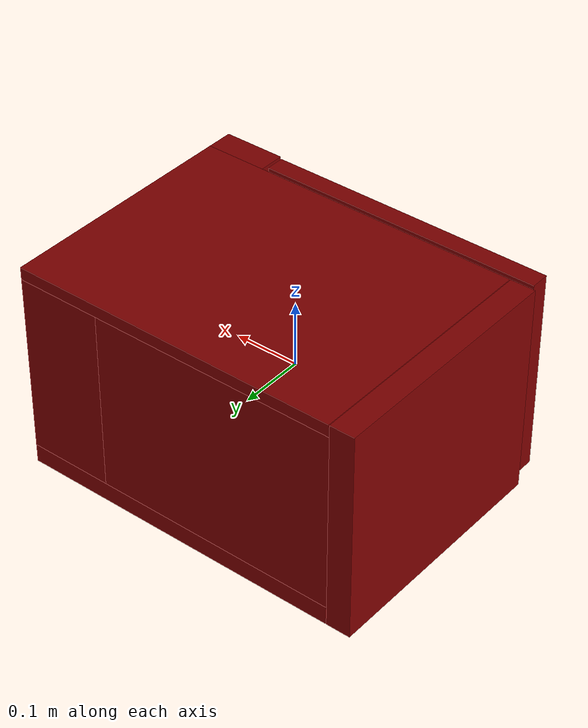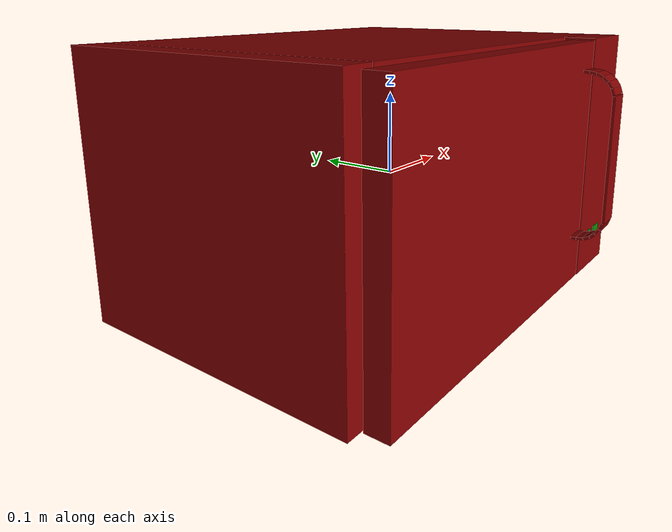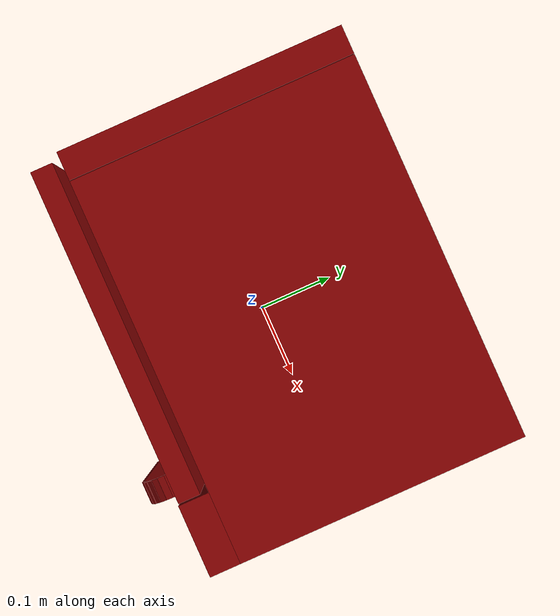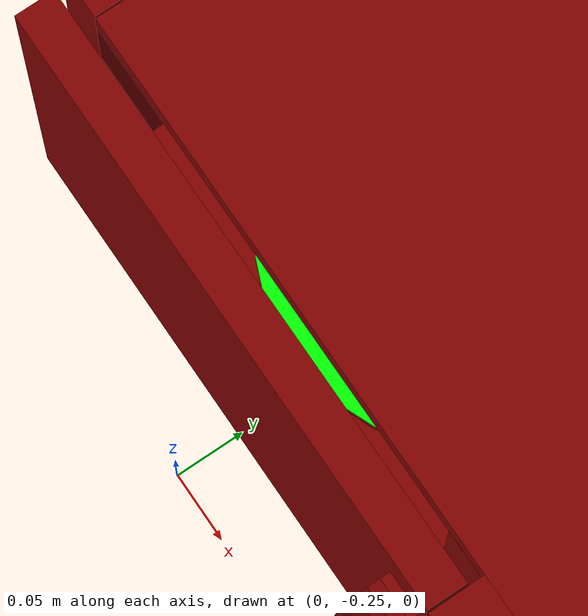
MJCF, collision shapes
<?xml version='1.0' encoding='UTF-8'?>
<mujoco model="model">
  <option timestep="0.002" gravity="0.0 0.0 -9.81"/>
  <compiler angle="radian"/>
  <asset>
    <mesh file="visuals/door.obj" name="door_vis"/>
    <mesh file="visuals/door_Clear.obj" name="door_Clear_vis"/>
    <mesh file="visuals/Body001.obj" name="Body001_vis"/>
    <mesh file="visuals/Disc001.obj" name="Disc001_vis"/>
    <texture file="visuals/T_BC001.png" name="Body001_material" type="2d"/>
    <material name="Body001_material" rgba="1 1 1 1.0" texture="Body001_material" shininess="0.1" specular="5"/>
    <texture file="visuals/T_BC001.png" name="door_material" type="2d"/>
    <material name="door_material" rgba="1 1 1 1.0" texture="door_material" shininess="0.1" specular="5"/>
    <texture file="visuals/T_BC001.png" name="door_Clear_material" type="2d"/>
    <material name="door_Clear_material" rgba="1 1 1 0.800000011920929" texture="door_Clear_material" shininess="0.1" specular="0.3103448502657381"/>
    <texture file="visuals/T_BC001.png" name="Disc001_material" type="2d"/>
    <material name="Disc001_material" rgba="1 1 1 1.0" texture="Disc001_material" shininess="0.1" specular="5"/>
  </asset>
  <default>
    <default class="visual">
      <geom conaffinity="0" contype="0" group="1" type="mesh"/>
    </default>
    <default class="collision">
      <geom group="0" rgba="0.5 0 0 0.5"/>
    </default>
    <default class="spawn">
      <geom group="0" rgba="1 1 1 0.5" contype="0" conaffinity="0"/>
      <site group="0" rgba="1 1 1 0.5"/>
    </default>
    <default class="region">
      <geom group="1" conaffinity="0" contype="0" rgba="0 1 0 0"/>
    </default>
  </default>
  <worldbody>
    <body>
      <body name="object">
        <geom class="collision" type="cylinder" pos="-0.04666707 0.01263050 -0.12687577" size="0.1430436074733734 0.0013297811383381486" quat="1.0 0.0 0.0 0.0" name="tray" rgba="0 1 0 0.5"/>
        <geom class="collision" type="box" pos="0.21019740 -0.18868268 -0.10379158" size="0.010136933997273445 0.0003916211426258087 0.004741274286061525" quat="1.0 0.0 0.0 0.0" name="stop_button" rgba="0.0 0.5 0 0.5"/>
        <geom class="collision" type="box" pos="0.23988795 -0.18868268 -0.10379158" size="0.010136937722563744 0.00039162117172963917 0.004741276614367962" quat="1.0 0.0 0.0 0.0" name="start_button" rgba="0.0 0.5 0 0.5"/>
        <geom mesh="Body001_vis" type="mesh" solimp="0.998 0.998 0.001" solref="0.001 1" friction="0.95 0.3 0.1" class="visual" material="Body001_material"/>
        <geom class="collision" type="box" pos="0.01943722 0.04081721 -0.14936563" size="0.2532930076122284 0.1886618584394455 0.014441413804888725" quat="1.0 0.0 0.0 0.0"/>
        <geom class="collision" type="box" pos="0.01943722 0.04081721 0.15436795" size="0.2532930076122284 0.1886618584394455 0.009439082816243172" quat="1.0 0.0 0.0 0.0"/>
        <geom class="collision" type="box" pos="-0.25384417 0.04081722 0.00000001" size="0.01888604462146759 0.1886618584394455 0.16380701959133148" quat="1.0 0.0 0.0 0.0"/>
        <geom class="collision" type="box" pos="0.20777111 0.04081721 0.00500234" size="0.06495913863182068 0.1886618584394455 0.13992653787136078" quat="1.0 0.0 0.0 0.0"/>
        <geom class="collision" type="box" pos="-0.04607308 0.19336404 0.00500234" size="0.18888503313064575 0.036115001887083054 0.13992653787136078" quat="1.0 0.0 0.0 0.0"/>
        <geom class="collision" type="box" pos="0.22549662 -0.16795830 0.00490157" size="0.04723360762000084 0.02011367306113243 0.15890546143054962" quat="1.0 0.0 0.0 0.0"/>
        <geom class="collision" type="cylinder" pos="-0.23217854 0.00114461 0.01121110" size="0.06331170350313187 0.002350698923692107" quat="0.7071068286895752 -0.0 0.7071067690849304 0.0"/>
        <body name="door">
          <joint axis="0.0 0.0 1.0" pos="-0.25011536 -0.16957445 0.00487047" limited="true" name="microjoint" range="-1.5707963267948966 0.0" type="hinge" damping="1" frictionloss="1" armature=".01" stiffness="0.05"/>
          <geom mesh="door_vis" type="mesh" solimp="0.998 0.998 0.001" solref="0.001 1" friction="0.95 0.3 0.1" class="visual" material="door_material"/>
          <geom class="collision" type="box" pos="-0.04366599 -0.17284249 0.00353908" size="0.21997743844985962 0.014452719129621983 0.15760520100593567" quat="1.0 0.0 0.0 0.0" name="door_main"/>
          <geom class="collision" type="box" pos="-0.04828857 -0.18259771 0.00487046" size="0.17944754660129547 0.0012225690297782421 0.09912668168544769" quat="1.0 0.0 0.0 0.0"/>
          <geom class="collision" type="box" pos="0.15637191 -0.22766355 0.01831997" size="0.014874949119985104 0.0018161089392378926 0.0801750048995018" quat="1.0 0.0 0.0 0.0" name="door_handle_main"/>
          <geom class="collision" type="box" pos="0.15637191 -0.19192499 0.12560581" size="0.014874967746436596 0.0036803672555834055 0.0018123169429600239" quat="1.0 0.0 0.0 0.0"/>
          <geom class="collision" type="box" pos="0.15637191 -0.19987725 0.12474015" size="0.014874967746436596 0.0045919534750282764 0.0018129788804799318" quat="0.9961947202682495 0.08715574443340302 0.0 0.0"/>
          <geom class="collision" type="box" pos="0.15637191 -0.20831312 0.12226914" size="0.014874967746436596 0.0045916493982076645 0.0018139276653528214" quat="0.9762960076332092 0.21643957495689392 0.0 0.0"/>
          <geom class="collision" type="box" pos="0.15637191 -0.21552835 0.11779643" size="0.014874967746436596 0.004591109696775675 0.0018147649243474007" quat="0.9396926164627075 0.3420201241970062 0.0 0.0"/>
          <geom class="collision" type="box" pos="0.15637191 -0.22147699 0.11146399" size="0.014874967746436596 0.004590372089296579 0.0018154338467866182" quat="0.8870107531547546 0.46174874901771545 0.0 0.0"/>
          <geom class="collision" type="box" pos="0.15637191 -0.22547315 0.10345733" size="0.014874967746436596 0.004589485935866833 0.0018158890306949615" quat="0.8191520571708679 0.5735764503479004 0.0 0.0"/>
          <geom class="collision" type="box" pos="0.15637191 -0.22547315 -0.06712531" size="0.014874967746436596 0.004589524120092392 0.0018158749444410205" quat="-1.0734452438043718e-08 -6.087809367727459e-08 -0.5735764503479004 -0.8191520571708679"/>
          <geom class="collision" type="box" pos="0.15637191 -0.22147699 -0.07513197" size="0.014874967746436596 0.0045904056169092655 0.001815410447306931" quat="-1.8588798056384803e-08 -5.89561466313171e-08 -0.46174871921539307 -0.8870107531547546"/>
          <geom class="collision" type="box" pos="0.15637191 -0.21552835 -0.08146441" size="0.014874967746436596 0.004591135773807764 0.0018147334922105074" quat="7.094482157299353e-08 2.582180336219153e-08 0.3420201241970062 0.9396926164627075"/>
          <geom class="collision" type="box" pos="0.15637191 -0.19987725 -0.08840813" size="0.014874967746436596 0.004591961391270161 0.0018129387171939015" quat="7.521060751969344e-08 6.580076039597316e-09 0.08715574443340302 0.9961947202682495"/>
          <geom class="collision" type="box" pos="0.15637191 -0.20831312 -0.08593713" size="0.014874967746436596 0.004591667093336582 0.0018138906452804804" quat="7.37082999080485e-08 1.6340733210995495e-08 0.21643957495689392 0.9762960076332092"/>
          <geom class="collision" type="box" pos="0.15637191 -0.19192499 -0.08927378" size="0.014874967746436596 0.0036803665570914745 0.0018123169429600239" quat="1.0 0.0 0.0 0.0"/>
          <body name="door_Clear">
            <geom mesh="door_Clear_vis" type="mesh" solimp="0.998 0.998 0.001" solref="0.001 1" friction="0.95 0.3 0.1" class="visual" material="door_Clear_material"/>
            <geom class="collision" type="box" pos="-0.04828857 -0.18259771 0.00487046" size="0.17944754660129547 0.0012225690297782421 0.09912668168544769" quat="1.0 0.0 0.0 0.0"/>
          </body>
        </body>
        <body name="Disc001">
          <joint axis="0.0 0.0 1.0" pos="-0.04666706 0.01263050 -0.13172370" limited="false" name="Disc001_joint" range="0 360" type="hinge" damping="1" frictionloss="1" armature=".01" stiffness="0.05"/>
          <geom mesh="Disc001_vis" type="mesh" solimp="0.998 0.998 0.001" solref="0.001 1" friction="0.95 0.3 0.1" class="visual" material="Disc001_material"/>
          <geom class="collision" type="cylinder" pos="-0.04666707 0.01263050 -0.13132635" size="0.1430436074733734 0.0026060561649501324" quat="1.0 0.0 0.0 0.0"/>
        </body>
        <geom class="region" name="reg_int" type="box" pos="-0.04457227999999999 0.00486014500000001 0.006209809999999996" size="0.17922783 0.146927535 0.13275568"/>
        <geom class="region" name="reg_main" type="box" pos="0.0 0.0206514 0.0" size="0.27373023 0.20982766000000003 0.16480703"/>
      <geom class="region" name="reg_tray" type="cylinder" pos="-0.04666707 0.0126305 0.0067097505691690595" size="0.1430436074733734 0.1312557394308309"/></body>
    </body>
  </worldbody>
  <actuator>
    <motor name="microjoint_actuator" joint="microjoint" gear="10"/>
    <motor name="Disc001_joint_actuator" joint="Disc001_joint" gear="10"/>
  </actuator>
</mujoco>
